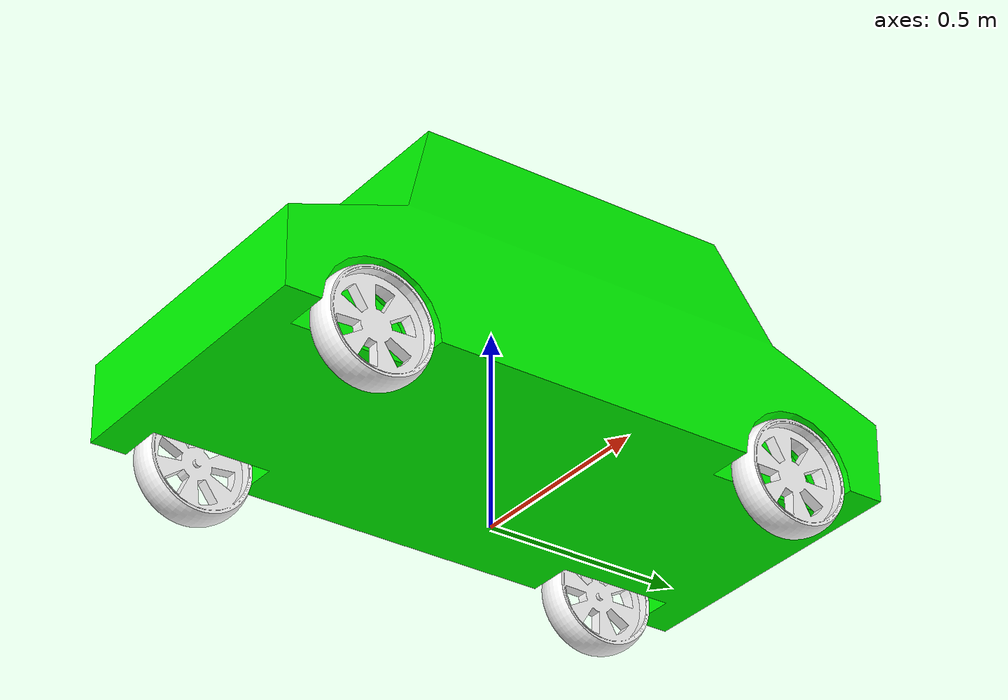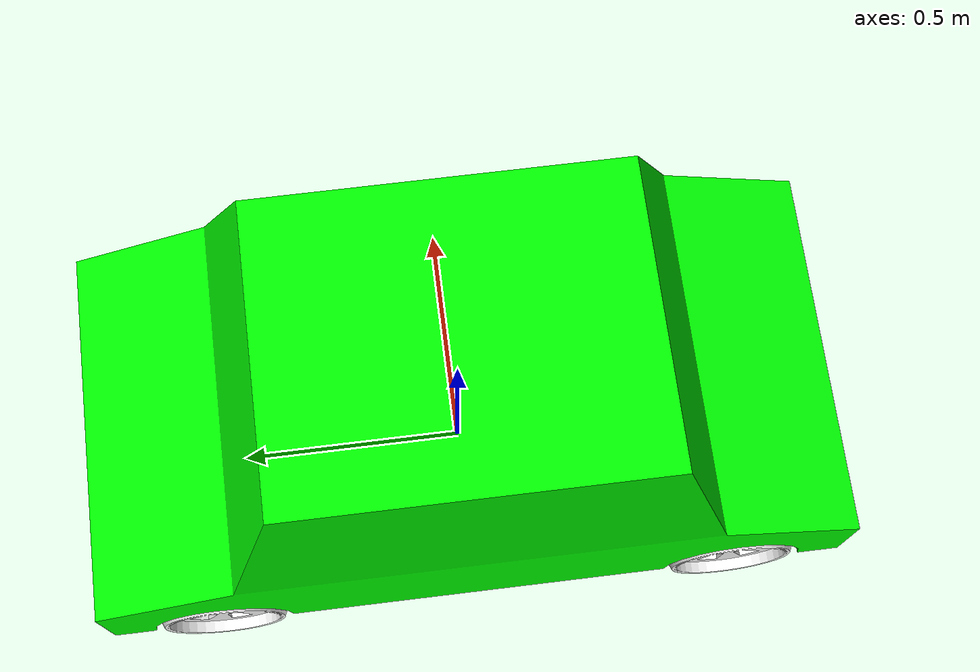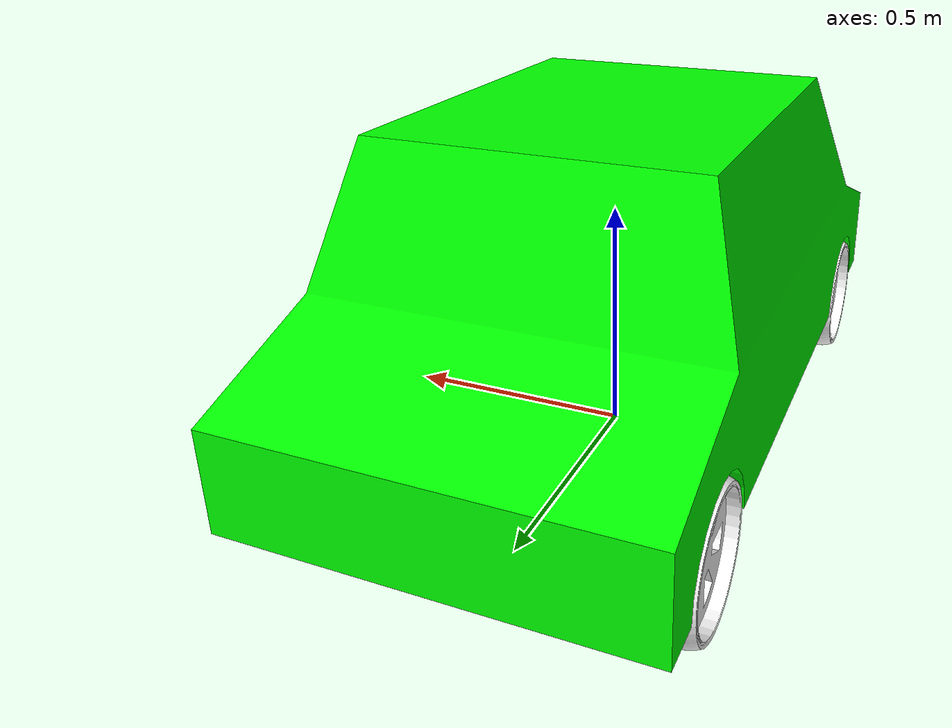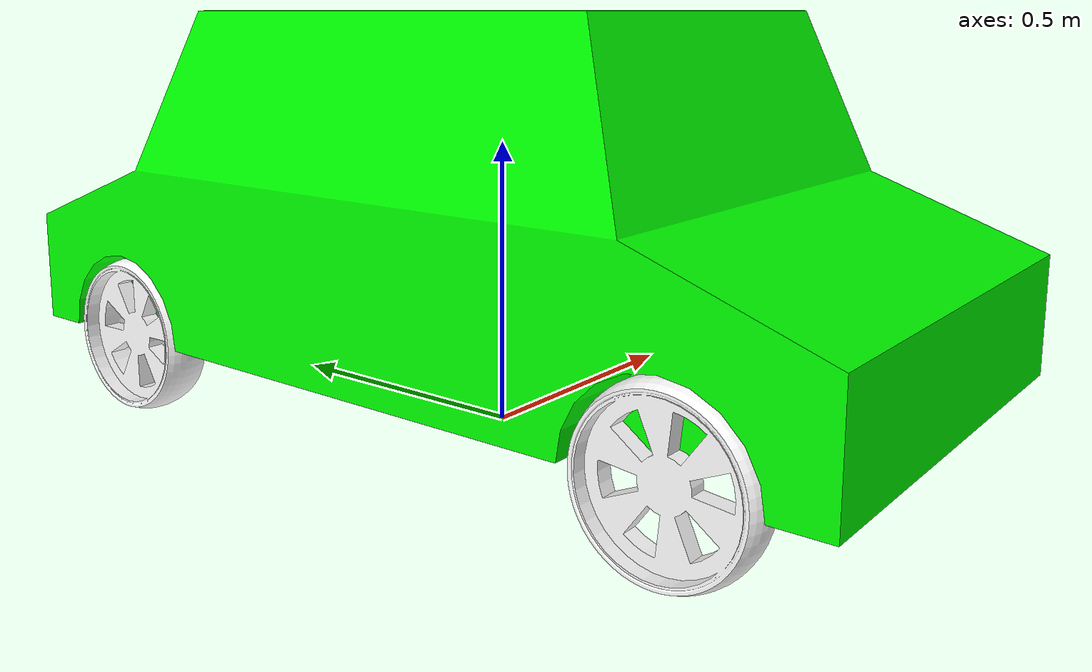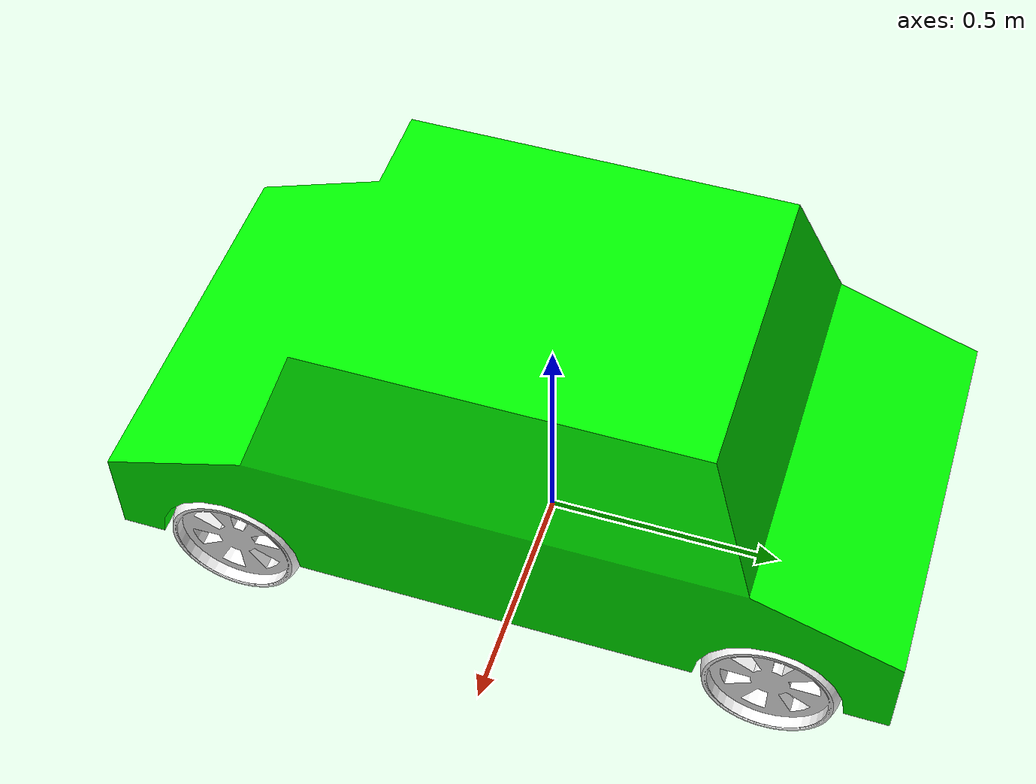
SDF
<sdf version='1.11'>
  <model name='car_robot'>
    <link name='base_link'>
      <inertial>
        <pose>5.9003000000000001e-18 3.1919000000000002e-16 0.38718000000000002 0 0 0</pose>
        <mass>543.53999999999996</mass>
        <inertia>
          <ixx>93.813000000000002</ixx>
          <ixy>-7.5200000000000007e-15</ixy>
          <ixz>-1.8725e-15</ixz>
          <iyy>40.103000000000002</iyy>
          <iyz>8.6220999999999994e-15</iyz>
          <izz>106.33</izz>
        </inertia>
      </inertial>
      <collision name='base_link_collision'>
        <pose>0 0 0 0 0 0</pose>
        <geometry>
          <mesh>
            <scale>1 1 1</scale>
            <uri>meshes/base_link.STL</uri>
          </mesh>
        </geometry>
      </collision>
      <visual name='base_link_visual'>
        <pose>0 0 0 0 0 0</pose>
        <geometry>
          <mesh>
            <scale>1 1 1</scale>
            <uri>meshes/base_link.STL</uri>
          </mesh>
        </geometry>
        <material>
          <diffuse>0 1 0 1</diffuse>
          <ambient>0 1 0 1</ambient>
        </material>
      </visual>
    </link>
    <joint name='joint1' type='revolute'>
      <pose relative_to='base_link'>0.36099999999999999 -0.56000000000000005 0.14000000000000001 -1.5708 -5.5511151231257827e-17 -1.5708</pose>
      <parent>base_link</parent>
      <child>wheel1</child>
      <axis>
        <xyz>0 0 1</xyz>
        <limit>
          <lower>0</lower>
          <upper>0</upper>
          <effort>10</effort>
          <velocity>10</velocity>
        </limit>
        <dynamics>
          <spring_reference>0</spring_reference>
          <spring_stiffness>0</spring_stiffness>
        </dynamics>
      </axis>
    </joint>
    <link name='wheel1'>
      <pose relative_to='joint1'>0 0 0 0 0 0</pose>
      <inertial>
        <pose>2.2204e-16 -1.1102e-16 -3.0960999999999997e-05 0 0 0</pose>
        <mass>2.0699999999999998</mass>
        <inertia>
          <ixx>0.013431</ixx>
          <ixy>6.0614999999999997e-18</ixy>
          <ixz>-1.8962e-19</ixz>
          <iyy>0.013431</iyy>
          <iyz>-4.1157999999999998e-19</iyz>
          <izz>0.025767000000000002</izz>
        </inertia>
      </inertial>
      <collision name='wheel1_collision'>
        <pose>0 0 0 0 0 0</pose>
        <geometry>
          <mesh>
            <scale>1 1 1</scale>
            <uri>meshes/wheel1.STL</uri>
          </mesh>
        </geometry>
      </collision>
      <visual name='wheel1_visual'>
        <pose>0 0 0 0 0 0</pose>
        <geometry>
          <mesh>
            <scale>1 1 1</scale>
            <uri>meshes/wheel1.STL</uri>
          </mesh>
        </geometry>
        <material>
          <diffuse>1 1 1 1</diffuse>
          <ambient>1 1 1 1</ambient>
        </material>
      </visual>
    </link>
    <joint name='joint2' type='revolute'>
      <pose relative_to='base_link'>0.36099999999999999 0.56000000000000005 0.14000000000000001 -1.5708 -5.5511151231257827e-17 -1.5708</pose>
      <parent>base_link</parent>
      <child>wheel2</child>
      <axis>
        <xyz>0 0 1</xyz>
        <limit>
          <lower>0</lower>
          <upper>0</upper>
          <effort>10</effort>
          <velocity>10</velocity>
        </limit>
        <dynamics>
          <spring_reference>0</spring_reference>
          <spring_stiffness>0</spring_stiffness>
        </dynamics>
      </axis>
    </joint>
    <link name='wheel2'>
      <pose relative_to='joint2'>0 0 0 0 0 0</pose>
      <inertial>
        <pose>3.5859999999999998e-14 4.9849e-14 -3.0960999999999997e-05 0 0 0</pose>
        <mass>2.0699999999999998</mass>
        <inertia>
          <ixx>0.013431</ixx>
          <ixy>-9.5721000000000001e-18</ixy>
          <ixz>-1.4337999999999999e-17</ixz>
          <iyy>0.013431</iyy>
          <iyz>-2.4596000000000001e-17</iyz>
          <izz>0.025767000000000002</izz>
        </inertia>
      </inertial>
      <collision name='wheel2_collision'>
        <pose>0 0 0 0 0 0</pose>
        <geometry>
          <mesh>
            <scale>1 1 1</scale>
            <uri>meshes/wheel2.STL</uri>
          </mesh>
        </geometry>
      </collision>
      <visual name='wheel2_visual'>
        <pose>0 0 0 0 0 0</pose>
        <geometry>
          <mesh>
            <scale>1 1 1</scale>
            <uri>meshes/wheel2.STL</uri>
          </mesh>
        </geometry>
        <material>
          <diffuse>1 1 1 1</diffuse>
          <ambient>1 1 1 1</ambient>
        </material>
      </visual>
    </link>
    <joint name='joint3' type='revolute'>
      <pose relative_to='base_link'>-0.36099999999999999 0.56000000000000005 0.14000000000000001 1.5708 5.5511151231257827e-17 -1.5708</pose>
      <parent>base_link</parent>
      <child>wheel3</child>
      <axis>
        <xyz>0 0 1</xyz>
        <limit>
          <lower>0</lower>
          <upper>0</upper>
          <effort>10</effort>
          <velocity>10</velocity>
        </limit>
        <dynamics>
          <spring_reference>0</spring_reference>
          <spring_stiffness>0</spring_stiffness>
        </dynamics>
      </axis>
    </joint>
    <link name='wheel3'>
      <pose relative_to='joint3'>0 0 0 0 0 0</pose>
      <inertial>
        <pose>-1.1102e-16 -1.1102e-16 -3.0960999999999997e-05 0 0 0</pose>
        <mass>2.0699999999999998</mass>
        <inertia>
          <ixx>0.013431</ixx>
          <ixy>-7.5481000000000007e-18</ixy>
          <ixz>1.0785000000000001e-18</ixz>
          <iyy>0.013431</iyy>
          <iyz>-3.2925e-19</iyz>
          <izz>0.025767000000000002</izz>
        </inertia>
      </inertial>
      <collision name='wheel3_collision'>
        <pose>0 0 0 0 0 0</pose>
        <geometry>
          <mesh>
            <scale>1 1 1</scale>
            <uri>meshes/wheel3.STL</uri>
          </mesh>
        </geometry>
      </collision>
      <visual name='wheel3_visual'>
        <pose>0 0 0 0 0 0</pose>
        <geometry>
          <mesh>
            <scale>1 1 1</scale>
            <uri>meshes/wheel3.STL</uri>
          </mesh>
        </geometry>
        <material>
          <diffuse>1 1 1 1</diffuse>
          <ambient>1 1 1 1</ambient>
        </material>
      </visual>
    </link>
    <joint name='joint4' type='revolute'>
      <pose relative_to='base_link'>-0.36099999999999999 -0.56000000000000005 0.14000000000000001 1.5708 5.5511151231257827e-17 -1.5708</pose>
      <parent>base_link</parent>
      <child>wheel4</child>
      <axis>
        <xyz>0 0 1</xyz>
        <limit>
          <lower>0</lower>
          <upper>0</upper>
          <effort>10</effort>
          <velocity>10</velocity>
        </limit>
        <dynamics>
          <spring_reference>0</spring_reference>
          <spring_stiffness>0</spring_stiffness>
        </dynamics>
      </axis>
    </joint>
    <link name='wheel4'>
      <pose relative_to='joint4'>0 0 0 0 0 0</pose>
      <inertial>
        <pose>5.4178999999999999e-14 -5.0182e-14 -3.0960999999999997e-05 0 0 0</pose>
        <mass>2.0699999999999998</mass>
        <inertia>
          <ixx>0.013431</ixx>
          <ixy>2.0108999999999998e-18</ixy>
          <ixz>-1.1238e-17</ixz>
          <iyy>0.013431</iyy>
          <iyz>2.7608999999999998e-17</iyz>
          <izz>0.025767000000000002</izz>
        </inertia>
      </inertial>
      <collision name='wheel4_collision'>
        <pose>0 0 0 0 0 0</pose>
        <geometry>
          <mesh>
            <scale>1 1 1</scale>
            <uri>meshes/wheel4.STL</uri>
          </mesh>
        </geometry>
      </collision>
      <visual name='wheel4_visual'>
        <pose>0 0 0 0 0 0</pose>
        <geometry>
          <mesh>
            <scale>1 1 1</scale>
            <uri>meshes/wheel4.STL</uri>
          </mesh>
        </geometry>
        <material>
          <diffuse>1 1 1 1</diffuse>
          <ambient>1 1 1 1</ambient>
        </material>
      </visual>
    </link>
    <plugin name='gz::sim::systems::DiffDrive' filename='gz-sim-diff-drive-system'>
      <left_joint>left_wheel_joint</left_joint>
      <right_joint>right_wheel_joint</right_joint>
      <wheel_separation>0.722</wheel_separation>
      <wheel_radius>0.14</wheel_radius>
      <odom_publish_frequency>10</odom_publish_frequency>
      <topic>/cmd_vel</topic>
    </plugin>
  </model>
</sdf>
